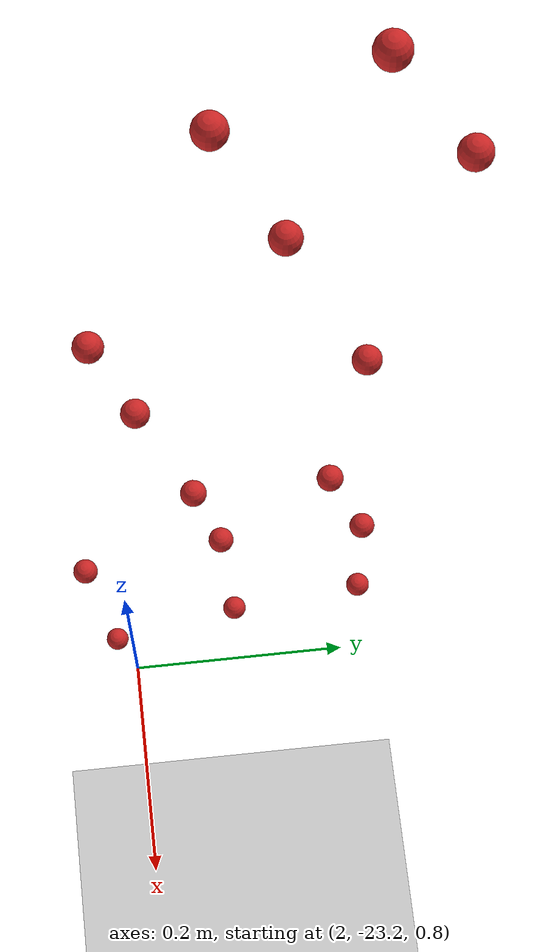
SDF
<sdf version="1.4">
 <world name="default">
  <model name="ground_plane">
   <static>1</static>
   <link name="link">
    <collision name="collision">
     <geometry><plane><normal>0 0 1</normal><size>100 100</size></plane></geometry>
     <surface><friction><ode><mu>100</mu><mu2>50</mu2></ode></friction></surface>
    </collision>
    <visual name="visual">
     <cast_shadows>0</cast_shadows>
     <geometry><plane><normal>0 0 1</normal><size>100 100</size></plane></geometry>
     <material>
      <script><uri>file://media/materials/scripts/gazebo.material</uri><name>Gazebo/Grey</name></script>
     </material>
    </visual>
    <velocity_decay><linear>0</linear><angular>0</angular></velocity_decay>
   </link>
  </model>
  <model name="apple694">
   <link name="my_apple">
    <inertial>
     <pose>2 0 0 0 -0 0</pose>
     <mass>1</mass>
     <inertia><ixx>1</ixx><ixy>0</ixy><ixz>0</ixz><iyy>1</iyy><iyz>0</iyz><izz>1</izz></inertia>
    </inertial>
    <collision name="my_apple_collision">
     <pose>2 0 1 0 -0 0</pose>
     <geometry><sphere><radius>0.01</radius></sphere></geometry>
    </collision>
    <visual name="my_apple_visual">
     <pose>2 0 1 0 -0 0</pose>
     <geometry><sphere><radius>0.01</radius></sphere></geometry>
     <material><script><name>Gazebo/Red</name><uri>__default__</uri></script></material>
    </visual>
    <gravity>0</gravity>
    <velocity_decay><linear>0</linear><angular>0</angular></velocity_decay>
   </link>
   <pose>0 -23.1929 0.466911 0 -0 0</pose>
   <static>0</static>
  </model>
  <model name="apple697">
   <link name="my_apple">
    <inertial>
     <pose>2 0 0 0 -0 0</pose>
     <mass>1</mass>
     <inertia><ixx>1</ixx><ixy>0</ixy><ixz>0</ixz><iyy>1</iyy><iyz>0</iyz><izz>1</izz></inertia>
    </inertial>
    <collision name="my_apple_collision">
     <pose>2 0 1 0 -0 0</pose>
     <geometry><sphere><radius>0.01</radius></sphere></geometry>
    </collision>
    <visual name="my_apple_visual">
     <pose>2 0 1 0 -0 0</pose>
     <geometry><sphere><radius>0.01</radius></sphere></geometry>
     <material><script><name>Gazebo/Red</name><uri>__default__</uri></script></material>
    </visual>
    <gravity>0</gravity>
    <velocity_decay><linear>0</linear><angular>0</angular></velocity_decay>
   </link>
   <pose>0 -23.2273 0.081025 0 -0 0</pose>
   <static>0</static>
  </model>
  <model name="apple698">
   <link name="my_apple">
    <inertial>
     <pose>2 0 0 0 -0 0</pose>
     <mass>1</mass>
     <inertia><ixx>1</ixx><ixy>0</ixy><ixz>0</ixz><iyy>1</iyy><iyz>0</iyz><izz>1</izz></inertia>
    </inertial>
    <collision name="my_apple_collision">
     <pose>2 0 1 0 -0 0</pose>
     <geometry><sphere><radius>0.01</radius></sphere></geometry>
    </collision>
    <visual name="my_apple_visual">
     <pose>2 0 1 0 -0 0</pose>
     <geometry><sphere><radius>0.01</radius></sphere></geometry>
     <material><script><name>Gazebo/Red</name><uri>__default__</uri></script></material>
    </visual>
    <gravity>0</gravity>
    <velocity_decay><linear>0</linear><angular>0</angular></velocity_decay>
   </link>
   <pose>0 -23.1696 0.368542 0 -0 0</pose>
   <static>0</static>
  </model>
  <model name="apple699">
   <link name="my_apple">
    <inertial>
     <pose>2 0 0 0 -0 0</pose>
     <mass>1</mass>
     <inertia><ixx>1</ixx><ixy>0</ixy><ixz>0</ixz><iyy>1</iyy><iyz>0</iyz><izz>1</izz></inertia>
    </inertial>
    <collision name="my_apple_collision">
     <pose>2 0 1 0 -0 0</pose>
     <geometry><sphere><radius>0.01</radius></sphere></geometry>
    </collision>
    <visual name="my_apple_visual">
     <pose>2 0 1 0 -0 0</pose>
     <geometry><sphere><radius>0.01</radius></sphere></geometry>
     <material><script><name>Gazebo/Red</name><uri>__default__</uri></script></material>
    </visual>
    <gravity>0</gravity>
    <velocity_decay><linear>0</linear><angular>0</angular></velocity_decay>
   </link>
   <pose>0 -23.1148 0.122427 0 -0 0</pose>
   <static>0</static>
  </model>
  <model name="apple701">
   <link name="my_apple">
    <inertial>
     <pose>2 0 0 0 -0 0</pose>
     <mass>1</mass>
     <inertia><ixx>1</ixx><ixy>0</ixy><ixz>0</ixz><iyy>1</iyy><iyz>0</iyz><izz>1</izz></inertia>
    </inertial>
    <collision name="my_apple_collision">
     <pose>2 0 1 0 -0 0</pose>
     <geometry><sphere><radius>0.01</radius></sphere></geometry>
    </collision>
    <visual name="my_apple_visual">
     <pose>2 0 1 0 -0 0</pose>
     <geometry><sphere><radius>0.01</radius></sphere></geometry>
     <material><script><name>Gazebo/Red</name><uri>__default__</uri></script></material>
    </visual>
    <gravity>0</gravity>
    <velocity_decay><linear>0</linear><angular>0</angular></velocity_decay>
   </link>
   <pose>0 -23.1045 -0.047864 0 -0 0</pose>
   <static>0</static>
  </model>
  <model name="apple702">
   <link name="my_apple">
    <inertial>
     <pose>2 0 0 0 -0 0</pose>
     <mass>1</mass>
     <inertia><ixx>1</ixx><ixy>0</ixy><ixz>0</ixz><iyy>1</iyy><iyz>0</iyz><izz>1</izz></inertia>
    </inertial>
    <collision name="my_apple_collision">
     <pose>2 0 1 0 -0 0</pose>
     <geometry><sphere><radius>0.01</radius></sphere></geometry>
    </collision>
    <visual name="my_apple_visual">
     <pose>2 0 1 0 -0 0</pose>
     <geometry><sphere><radius>0.01</radius></sphere></geometry>
     <material><script><name>Gazebo/Red</name><uri>__default__</uri></script></material>
    </visual>
    <gravity>0</gravity>
    <velocity_decay><linear>0</linear><angular>0</angular></velocity_decay>
   </link>
   <pose>0 -23.0738 0.57235 0 -0 0</pose>
   <static>0</static>
  </model>
  <model name="apple703">
   <link name="my_apple">
    <inertial>
     <pose>2 0 0 0 -0 0</pose>
     <mass>1</mass>
     <inertia><ixx>1</ixx><ixy>0</ixy><ixz>0</ixz><iyy>1</iyy><iyz>0</iyz><izz>1</izz></inertia>
    </inertial>
    <collision name="my_apple_collision">
     <pose>2 0 1 0 -0 0</pose>
     <geometry><sphere><radius>0.01</radius></sphere></geometry>
    </collision>
    <visual name="my_apple_visual">
     <pose>2 0 1 0 -0 0</pose>
     <geometry><sphere><radius>0.01</radius></sphere></geometry>
     <material><script><name>Gazebo/Red</name><uri>__default__</uri></script></material>
    </visual>
    <gravity>0</gravity>
    <velocity_decay><linear>0</linear><angular>0</angular></velocity_decay>
   </link>
   <pose>0 -23.0172 0.414945 0 -0 0</pose>
   <static>0</static>
  </model>
  <model name="apple706">
   <link name="my_apple">
    <inertial>
     <pose>2 0 0 0 -0 0</pose>
     <mass>1</mass>
     <inertia><ixx>1</ixx><ixy>0</ixy><ixz>0</ixz><iyy>1</iyy><iyz>0</iyz><izz>1</izz></inertia>
    </inertial>
    <collision name="my_apple_collision">
     <pose>2 0 1 0 -0 0</pose>
     <geometry><sphere><radius>0.01</radius></sphere></geometry>
    </collision>
    <visual name="my_apple_visual">
     <pose>2 0 1 0 -0 0</pose>
     <geometry><sphere><radius>0.01</radius></sphere></geometry>
     <material><script><name>Gazebo/Red</name><uri>__default__</uri></script></material>
    </visual>
    <gravity>0</gravity>
    <velocity_decay><linear>0</linear><angular>0</angular></velocity_decay>
   </link>
   <pose>0 -22.976 0.639729 0 -0 0</pose>
   <static>0</static>
  </model>
  <model name="apple712">
   <link name="my_apple">
    <inertial>
     <pose>2 0 0 0 -0 0</pose>
     <mass>1</mass>
     <inertia><ixx>1</ixx><ixy>0</ixy><ixz>0</ixz><iyy>1</iyy><iyz>0</iyz><izz>1</izz></inertia>
    </inertial>
    <collision name="my_apple_collision">
     <pose>2 0 1 0 -0 0</pose>
     <geometry><sphere><radius>0.01</radius></sphere></geometry>
    </collision>
    <visual name="my_apple_visual">
     <pose>2 0 1 0 -0 0</pose>
     <geometry><sphere><radius>0.01</radius></sphere></geometry>
     <material><script><name>Gazebo/Red</name><uri>__default__</uri></script></material>
    </visual>
    <gravity>0</gravity>
    <velocity_decay><linear>0</linear><angular>0</angular></velocity_decay>
   </link>
   <pose>0 -23.0009 0.123601 0 -0 0</pose>
   <static>0</static>
  </model>
  <model name="apple718">
   <link name="my_apple">
    <inertial>
     <pose>2 0 0 0 -0 0</pose>
     <mass>1</mass>
     <inertia><ixx>1</ixx><ixy>0</ixy><ixz>0</ixz><iyy>1</iyy><iyz>0</iyz><izz>1</izz></inertia>
    </inertial>
    <collision name="my_apple_collision">
     <pose>2 0 1 0 -0 0</pose>
     <geometry><sphere><radius>0.01</radius></sphere></geometry>
    </collision>
    <visual name="my_apple_visual">
     <pose>2 0 1 0 -0 0</pose>
     <geometry><sphere><radius>0.01</radius></sphere></geometry>
     <material><script><name>Gazebo/Red</name><uri>__default__</uri></script></material>
    </visual>
    <gravity>0</gravity>
    <velocity_decay><linear>0</linear><angular>0</angular></velocity_decay>
   </link>
   <pose>0 -23.0318 0.227006 0 -0 0</pose>
   <static>0</static>
  </model>
  <model name="apple719">
   <link name="my_apple">
    <inertial>
     <pose>2 0 0 0 -0 0</pose>
     <mass>1</mass>
     <inertia><ixx>1</ixx><ixy>0</ixy><ixz>0</ixz><iyy>1</iyy><iyz>0</iyz><izz>1</izz></inertia>
    </inertial>
    <collision name="my_apple_collision">
     <pose>2 0 1 0 -0 0</pose>
     <geometry><sphere><radius>0.01</radius></sphere></geometry>
    </collision>
    <visual name="my_apple_visual">
     <pose>2 0 1 0 -0 0</pose>
     <geometry><sphere><radius>0.01</radius></sphere></geometry>
     <material><script><name>Gazebo/Red</name><uri>__default__</uri></script></material>
    </visual>
    <gravity>0</gravity>
    <velocity_decay><linear>0</linear><angular>0</angular></velocity_decay>
   </link>
   <pose>0 -22.9953 -0.017875 0 -0 0</pose>
   <static>0</static>
  </model>
  <model name="apple730">
   <link name="my_apple">
    <inertial>
     <pose>2 0 0 0 -0 0</pose>
     <mass>1</mass>
     <inertia><ixx>1</ixx><ixy>0</ixy><ixz>0</ixz><iyy>1</iyy><iyz>0</iyz><izz>1</izz></inertia>
    </inertial>
    <collision name="my_apple_collision">
     <pose>2 0 1 0 -0 0</pose>
     <geometry><sphere><radius>0.01</radius></sphere></geometry>
    </collision>
    <visual name="my_apple_visual">
     <pose>2 0 1 0 -0 0</pose>
     <geometry><sphere><radius>0.01</radius></sphere></geometry>
     <material><script><name>Gazebo/Red</name><uri>__default__</uri></script></material>
    </visual>
    <gravity>0</gravity>
    <velocity_decay><linear>0</linear><angular>0</angular></velocity_decay>
   </link>
   <pose>0 -23.1145 0.679958 0 -0 0</pose>
   <static>0</static>
  </model>
  <model name="apple732">
   <link name="my_apple">
    <inertial>
     <pose>2 0 0 0 -0 0</pose>
     <mass>1</mass>
     <inertia><ixx>1</ixx><ixy>0</ixy><ixz>0</ixz><iyy>1</iyy><iyz>0</iyz><izz>1</izz></inertia>
    </inertial>
    <collision name="my_apple_collision">
     <pose>2 0 1 0 -0 0</pose>
     <geometry><sphere><radius>0.01</radius></sphere></geometry>
    </collision>
    <visual name="my_apple_visual">
     <pose>2 0 1 0 -0 0</pose>
     <geometry><sphere><radius>0.01</radius></sphere></geometry>
     <material><script><name>Gazebo/Red</name><uri>__default__</uri></script></material>
    </visual>
    <gravity>0</gravity>
    <velocity_decay><linear>0</linear><angular>0</angular></velocity_decay>
   </link>
   <pose>0 -23.2133 -0.103441 0 -0 0</pose>
   <static>0</static>
  </model>
  <model name="apple733">
   <link name="my_apple">
    <inertial>
     <pose>2 0 0 0 -0 0</pose>
     <mass>1</mass>
     <inertia><ixx>1</ixx><ixy>0</ixy><ixz>0</ixz><iyy>1</iyy><iyz>0</iyz><izz>1</izz></inertia>
    </inertial>
    <collision name="my_apple_collision">
     <pose>2 0 1 0 -0 0</pose>
     <geometry><sphere><radius>0.01</radius></sphere></geometry>
    </collision>
    <visual name="my_apple_visual">
     <pose>2 0 1 0 -0 0</pose>
     <geometry><sphere><radius>0.01</radius></sphere></geometry>
     <material><script><name>Gazebo/Red</name><uri>__default__</uri></script></material>
    </visual>
    <gravity>0</gravity>
    <velocity_decay><linear>0</linear><angular>0</angular></velocity_decay>
   </link>
   <pose>0 -23.1344 0.223248 0 -0 0</pose>
   <static>0</static>
  </model>
  <model name="apple738">
   <link name="my_apple">
    <inertial>
     <pose>2 0 0 0 -0 0</pose>
     <mass>1</mass>
     <inertia><ixx>1</ixx><ixy>0</ixy><ixz>0</ixz><iyy>1</iyy><iyz>0</iyz><izz>1</izz></inertia>
    </inertial>
    <collision name="my_apple_collision">
     <pose>2 0 1 0 -0 0</pose>
     <geometry><sphere><radius>0.01</radius></sphere></geometry>
    </collision>
    <visual name="my_apple_visual">
     <pose>2 0 1 0 -0 0</pose>
     <geometry><sphere><radius>0.01</radius></sphere></geometry>
     <material><script><name>Gazebo/Red</name><uri>__default__</uri></script></material>
    </visual>
    <gravity>0</gravity>
    <velocity_decay><linear>0</linear><angular>0</angular></velocity_decay>
   </link>
   <pose>0 -23.0272 0.730733 0 -0 0</pose>
   <static>0</static>
  </model>
 </world>
</sdf>
